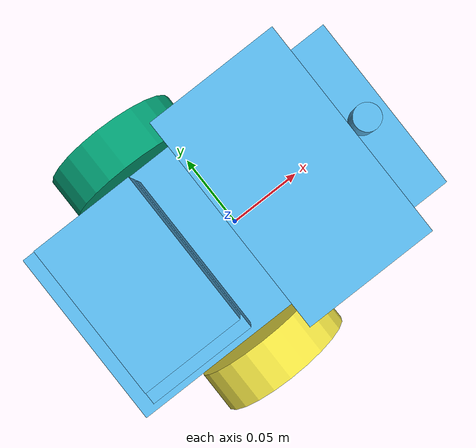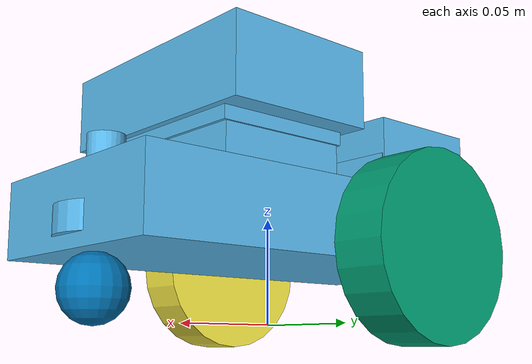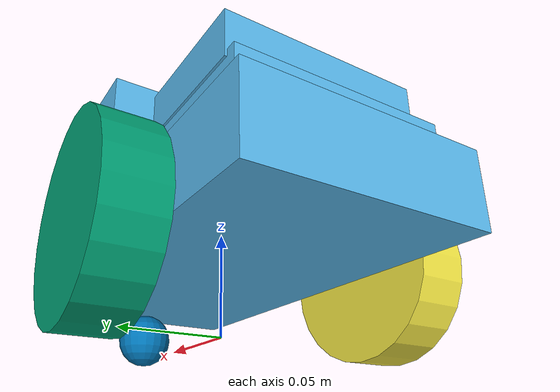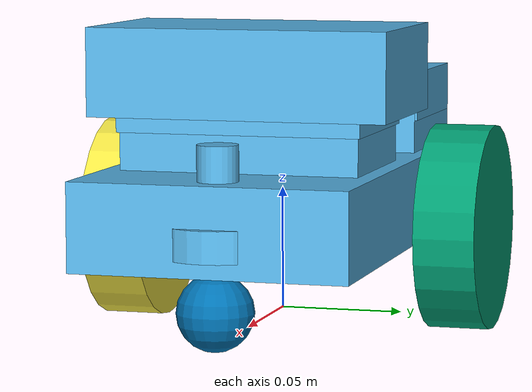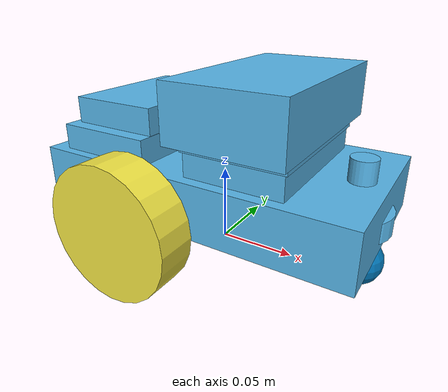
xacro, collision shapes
<?xml version="1.0" ?>
<robot xmlns:xacro="http://ros.org/wiki/xacro">

  <xacro:include filename="inertial_macros.xacro"/>

  <!-- Robot's chassis measurements -->
  <xacro:property name="base_length" value="0.21"/>
  <xacro:property name="base_width" value="0.11"/>
  <xacro:property name="base_height" value="0.035"/>

  <!-- Robot's wheel measurements -->
  <xacro:property name="wheel_outer_radius" value="0.0325"/>
  <xacro:property name="wheel_inner_radius" value="0.0225"/>
  <xacro:property name="wheel_height" value="0.025"/>

  <!-- Gap between the wheel and chassis along y-axis -->
  <xacro:property name="wheel_ygap" value="0.003"/>

  <!-- Distance between centre of wheel and robot base/chassis -->
  <xacro:property name="wheel_zoff" value="0.0125"/>

  <!-- Robot Base Footprint - the centre of the main robot chassis projected on the ground -->
  <link name="base_footprint"/>

  <joint name="base_joint" type="fixed">
    <parent link="base_footprint"/>
    <child link="base_link"/>
    <origin xyz="0 0 ${(wheel_outer_radius+wheel_zoff)}" rpy="0 0 0"/>
  </joint>

  <!-- Robot Base -->
  <link name="base_link">
      <visual>
        <origin xyz="0 0 -0.0125" rpy="0 0 0"/>
          <geometry>
              <mesh filename="package://real_lidarbot/models/lidarbot_description/meshes/robot_base_link.dae" />
          </geometry>
      </visual>
      <collision>
        <geometry>
          <box size="${base_length} ${base_width} ${base_height}"/>
        </geometry>
      </collision>

    <!-- Caster mount -->
      <visual name="caster_mount_visual">
          <origin xyz="0.086 0 -0.0475" rpy="0 0 0"/>
        <geometry>
          <mesh filename="package://real_lidarbot/models/lidarbot_description/meshes/caster_mount.dae" />
        </geometry>
      </visual>
      <collision name="caster_mount_collision">
        <origin xyz="0.086 0 -0.005" rpy="0 0 0"/>
        <geometry>
          <cylinder radius="0.023" length="0.0125"/>
        </geometry>
      </collision>

     <!-- Rpi stand -->
     <visual name="rpi_4_stand_visual">
      <origin xyz="-0.06 0.015 0.031" rpy="${pi} 0 ${-pi}"/>
        <geometry>
            <mesh filename="package://real_lidarbot/models/lidarbot_description/meshes/rpi_stand.dae" />
        </geometry>
    </visual>
    <collision name="rpi_4_stand_collision">
      <origin xyz="-0.06 0 0.017" rpy="0 0 ${pi/2}"/>
      <geometry>
        <box size="0.098 0.065 0.034"/>
      </geometry>
    </collision>

    <!-- Raspberry Pi -->
    <visual name="rpi_4_visual">
      <origin xyz="-0.059 0.00245 0.033" rpy="0 0 ${pi/2}"/>
      <geometry>
        <mesh filename="package://real_lidarbot/models/lidarbot_description/meshes/rpi_4.dae"/>
      </geometry>
    </visual>
    <collision name="rpi_4_collision">
      <origin xyz="-0.058 0.005 0.041" rpy="0 0 ${pi/2}"/>
      <geometry>
        <box size="0.09 0.06 0.02"/>
      </geometry>
    </collision>

    <!-- Power bank stand -->
    <visual name="power_bank_stand_visual">
      <origin xyz="0.033 0.015 0.031" rpy="${pi} 0 ${pi}"/>
      <geometry>
        <mesh filename="package://real_lidarbot/models/lidarbot_description/meshes/power_bank_stand.dae"/>
      </geometry>
    </visual>
    <collision name="power_bank_stand_collision">
      <origin xyz="0.033 0 0.0085" rpy="0 0 ${pi/2}"/>
      <geometry>
        <box size="0.098 0.065 0.015"/>
      </geometry>
    </collision>

    <!-- Power bank -->
    <visual name="power_bank_visual">
      <origin xyz="0.0635 0.04775 0.015" rpy="0 0 ${pi/2}"/>
      <geometry>
        <mesh filename="package://real_lidarbot/models/lidarbot_description/meshes/power_bank.dae"/>
      </geometry>
    </visual>
    <collision name="power_bank_collision">
      <origin xyz="0.033 0 0.025" rpy="0 0 ${pi/2}"/>
      <geometry>
        <box size="0.096 0.062 0.02"/>
      </geometry>
    </collision>

    <!-- Rplidar stand -->
    <visual name="rplidar_stand_visual">
      <origin xyz="0.033 0.015 0.017" rpy="0 0 ${-2*pi}"/>
      <geometry>
        <mesh filename="package://real_lidarbot/models/lidarbot_description/meshes/rplidar_stand.dae"/>
      </geometry>
    </visual>
    <collision name="rplidar_stand_collision">
      <origin xyz="0.033 0 0.04" rpy="0 0 ${pi/2}"/>
      <geometry>
        <box size="0.098 0.065 0.015"/>
      </geometry>
    </collision>

    <!-- Rplidar base -->
    <visual name="rplidar_base_visual">
      <origin xyz="0.03485 0.0087 0.037" rpy="0 0 ${-pi/2}"/>
        <geometry>
          <mesh filename="package://real_lidarbot/models/lidarbot_description/meshes/rplidar_base.dae"/>
        </geometry>
      </visual>
    <collision name="rplidar_base_collision">
      <origin xyz="0.033 0 0.056" rpy="0 0 ${-pi/2}"/>
      <geometry>
        <box size="0.12 0.072 0.035"/>
      </geometry>
    </collision>

    <!-- Depth camera mount -->
    <visual name="camera_mount_visual">
      <origin xyz="0.089 0 0.016" rpy="0 0 0"/>
        <geometry>
          <cylinder radius="0.007" length="0.03"/>
        </geometry>
    </visual>
    <collision name="camera_mount_collision">
      <origin xyz="0.089 0 0.016" rpy="0 0 0"/>
      <geometry>
        <cylinder radius="0.008" length="0.031"/>
      </geometry>
    </collision>

    <xacro:box_inertia mass="0.864" length="${base_length}" width="${base_width}" height="${base_height}">
      <origin xyz="0 0 -0.0125" rpy="0 0 0"/>
    </xacro:box_inertia>
  </link>

  <!-- Left Wheel -->
  <link name="left_wheel">
    <visual>
      <origin xyz="0 0 0" rpy="0 0 0"/>
        <geometry>
          <mesh filename="package://real_lidarbot/models/lidarbot_description/meshes/left_wheel.dae" />
        </geometry>
    </visual>
    <collision>
      <origin xyz="0 0 0.0155" rpy="0 0 0"/>
      <geometry>
        <cylinder radius="${wheel_outer_radius+0.01}" length="${wheel_height}"/>
      </geometry>
    </collision>

    <xacro:thick_walled_cylinder_inertia mass="0.031" outer_radius="${wheel_outer_radius}" inner_radius="${wheel_inner_radius}" height="${wheel_height}">
      <origin xyz="0 0 0" rpy="0 0 0"/>
    </xacro:thick_walled_cylinder_inertia>
  </link>

  <joint name="left_wheel_joint" type="continuous">
    <parent link="base_link"/>
    <child link="left_wheel"/>
    <origin xyz="-0.028 0.055 -${wheel_zoff}" rpy="${pi/2} 0 ${pi}"/>
    <axis xyz="0 0 1"/>
  </joint>

  <!-- Right Wheel -->
  <link name="right_wheel">
    <visual>
      <origin xyz="0 0 0" rpy="0 0 0"/>
      <geometry>
        <mesh filename="package://real_lidarbot/models/lidarbot_description/meshes/right_wheel.dae"/>
      </geometry>
    </visual>
    <collision>
      <origin xyz="0 0 -0.0065" rpy="0 0 0"/>
      <geometry>
        <cylinder radius="${wheel_outer_radius+0.01}" length="${wheel_height}"/>
      </geometry>
    </collision>

    <xacro:thick_walled_cylinder_inertia mass="0.031" outer_radius="${wheel_outer_radius}" inner_radius="${wheel_inner_radius}" height="${wheel_height}">
      <origin xyz="0 0 0" rpy="0 0 0"/>
    </xacro:thick_walled_cylinder_inertia>
  </link>

  <joint name="right_wheel_joint" type="continuous">
    <parent link="base_link"/>
    <child link="right_wheel"/>
    <origin xyz="-0.028 -0.065 -${wheel_zoff}" rpy="${pi/2} 0 ${-pi}"/>
    <axis xyz="0 0 1"/>
  </joint>

  <!-- Caster wheel -->
  <link name="caster_wheel">
    <visual>
      <geometry>
        <mesh filename="package://real_lidarbot/models/lidarbot_description/meshes/caster_wheel.dae"/>
      </geometry>
    </visual>
    <collision>
      <origin xyz="0 0 -0.001" rpy="0 0 ${pi/2}"/>
      <geometry>
        <sphere radius="0.015"/>
      </geometry>
    </collision>

    <xacro:sphere_inertia mass="0.033" radius="0.025">
      <origin xyz="0 0 0" rpy="0 0 0"/>
    </xacro:sphere_inertia>
  </link>

  <joint name="caster_wheel_joint" type="fixed">
    <parent link="base_link"/>
    <child link="caster_wheel"/>
    <origin xyz="0.0925 0 -0.031" rpy="0 0 ${pi/2}"/>
    <axis xyz="0 0 1"/>
  </joint>

</robot>

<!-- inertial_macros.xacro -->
<robot xmlns:xacro="http://ros.org/wiki/xacro">

    <!-- Some standard inertial calculations, obtained from: https://en.wikipedia.org/wiki/List_of_moments_of_inertia -->
    <xacro:macro name="box_inertia" params="mass length width height *origin">
        <inertial>
            <xacro:insert_block name="origin"/>
            <mass value="${mass}"/>
            <inertia ixx="${(mass/12) * (width*width + height*height)}" ixy="0.0" ixz="0.0"
                    iyy="${(mass/12) * (length*length + height*height)}" iyz="0.0"
                    izz="${(mass/12) * (length*length + width*width)}"/>
        </inertial>
    </xacro:macro>

    <xacro:macro name="thick_walled_cylinder_inertia" params="mass outer_radius inner_radius height *origin">
        <inertial>
            <xacro:insert_block name="origin"/>
            <mass value="${mass}"/>
            <inertia ixx="${(mass/12) * (3*(outer_radius*outer_radius + inner_radius*inner_radius) + height*height)}" ixy = "0.0" ixz = "0.0"
                    iyy="${(mass/12) * (3*(outer_radius*outer_radius + inner_radius*inner_radius) + height*height)}" iyz = "0.0"
                    izz="${(mass/2) * (outer_radius*outer_radius + inner_radius*inner_radius)}"/>
        </inertial>
    </xacro:macro>

    <xacro:macro name="sphere_inertia" params="mass radius *origin">
        <inertial>
            <xacro:insert_block name="origin"/>
            <mass value="${mass}"/>
            <inertia ixx="${(2/5) * mass * (radius*radius)}" ixy="0.0" ixz="0.0"
                    iyy="${(2/5) * mass * (radius*radius)}" iyz="0.0"
                    izz="${(2/5) * mass * (radius*radius)}"/>
        </inertial>
    </xacro:macro>

    <xacro:macro name="cylinder_inertia" params="mass length radius *origin">
        <inertial>
            <xacro:insert_block name="origin"/>
            <mass value="${mass}" />
            <inertia ixx="${(1/12) * mass * (3*radius*radius + length*length)}" ixy="0.0" ixz="0.0"
                    iyy="${(1/12) * mass * (3*radius*radius + length*length)}" iyz="0.0"
                    izz="${(1/2) * mass * (radius*radius)}" />
        </inertial>
    </xacro:macro>

</robot>
